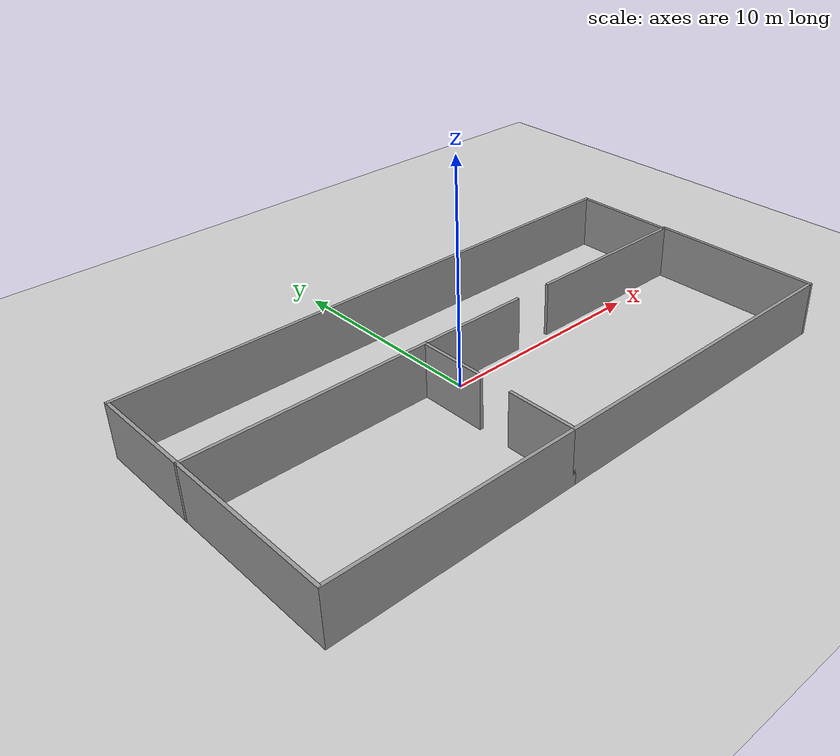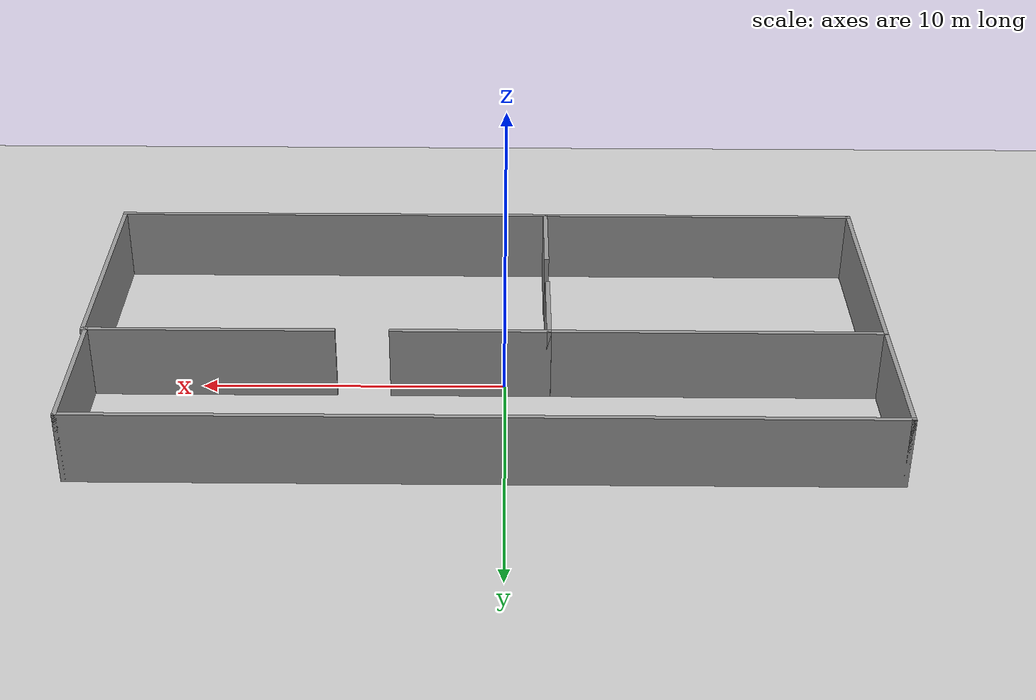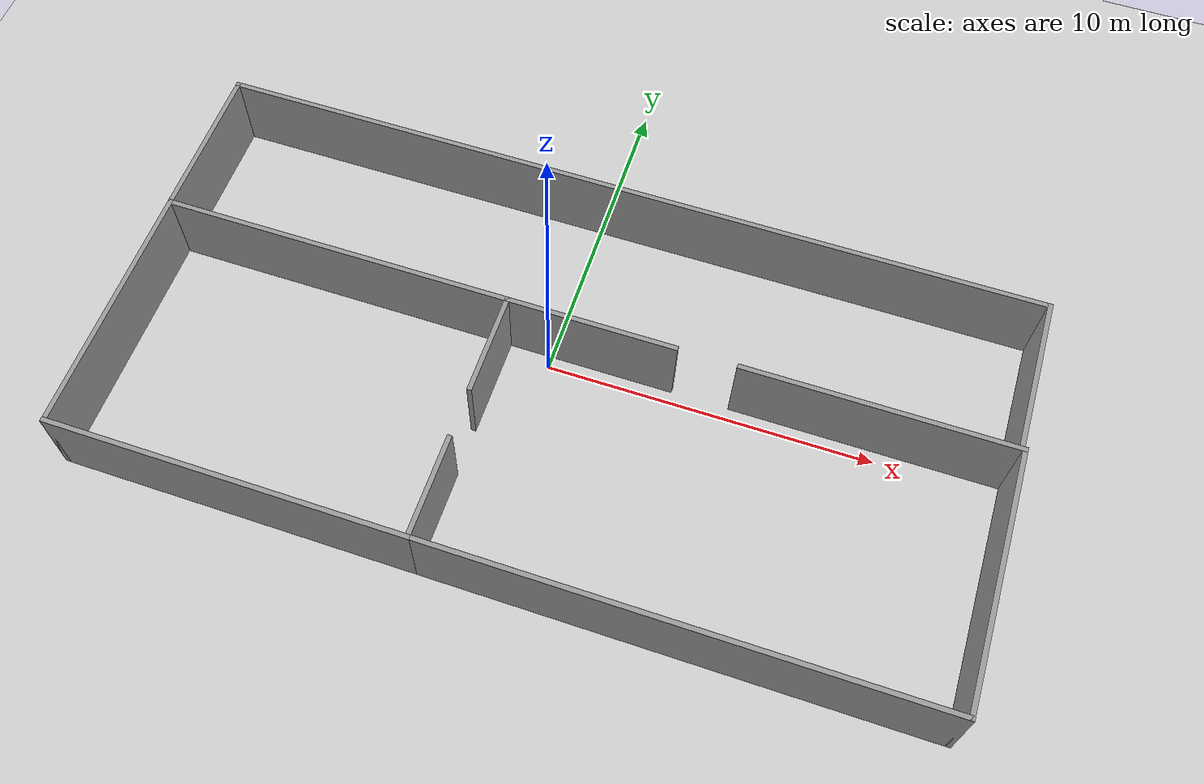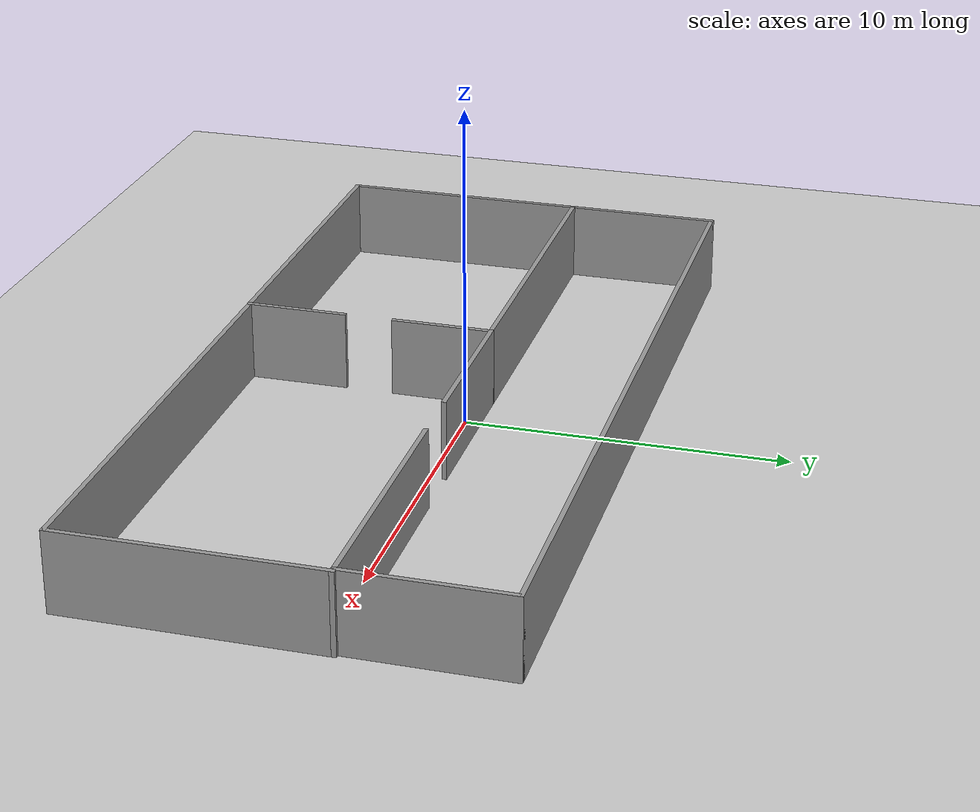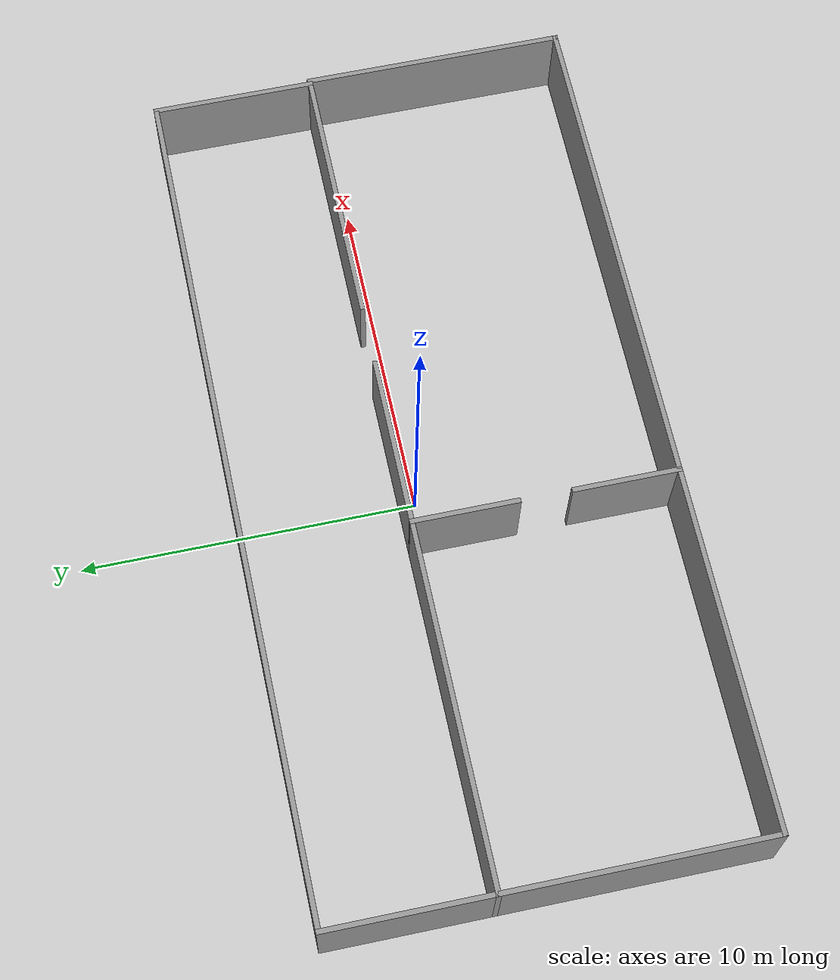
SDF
<sdf version="1.7">
 <world name="default">
  <light name="sun" type="directional">
   <pose>0 0 10 0 -0 0</pose>
   <diffuse>0.8 0.8 0.8 1</diffuse>
   <specular>0.2 0.2 0.2 1</specular>
   <attenuation>
    <range>1000</range>
    <constant>0.9</constant>
    <linear>0.01</linear>
    <quadratic>0.001</quadratic>
   </attenuation>
   <direction>-0.5 0.1 -0.9</direction>
   <spot><inner_angle>0</inner_angle><outer_angle>0</outer_angle><falloff>0</falloff></spot>
  </light>
  <model name="ground_plane">
   <static>1</static>
   <link name="link">
    <collision name="collision">
     <geometry><plane><normal>0 0 1</normal><size>100 100</size></plane></geometry>
     <surface><friction><ode><mu>100</mu><mu2>50</mu2></ode></friction></surface>
    </collision>
    <visual name="visual">
     <cast_shadows>0</cast_shadows>
     <geometry><plane><normal>0 0 1</normal><size>100 100</size></plane></geometry>
     <material>
      <script><uri>file://media/materials/scripts/gazebo.material</uri><name>Gazebo/Grey</name></script>
     </material>
    </visual>
   </link>
  </model>
  <gravity>0 0 -9.8</gravity>
  <magnetic_field>6e-06 2.3e-05 -4.2e-05</magnetic_field>
  <atmosphere type="adiabatic"/>
  <physics type="ode">
   <max_step_size>0.001</max_step_size>
   <real_time_factor>1</real_time_factor>
   <real_time_update_rate>1000</real_time_update_rate>
  </physics>
  <scene><ambient>0.4 0.4 0.4 1</ambient><background>0.7 0.7 0.7 1</background><shadows>1</shadows></scene>
  <audio><device>default</device></audio>
  <spherical_coordinates>
   <surface_model>EARTH_WGS84</surface_model>
   <latitude_deg>0</latitude_deg>
   <longitude_deg>0</longitude_deg>
   <elevation>0</elevation>
   <heading_deg>0</heading_deg>
  </spherical_coordinates>
  <model name="my_building">
   <pose>0.705623 -1.0698 0 0 -0 0</pose>
   <link name="Wall_10">
    <collision name="Wall_10_Collision">
     <geometry><box><size>5.25 0.15 2.5</size></box></geometry>
     <pose>0 0 1.25 0 -0 0</pose>
    </collision>
    <visual name="Wall_10_Visual">
     <pose>0 0 1.25 0 -0 0</pose>
     <geometry><box><size>5.25 0.15 2.5</size></box></geometry>
     <material>
      <script><uri>file://media/materials/scripts/gazebo.material</uri><name>Gazebo/Grey</name></script>
      <ambient>1 1 1 1</ambient>
     </material>
     <meta><layer>0</layer></meta>
    </visual>
    <pose>0.424999 1.5 0 0 -0 0</pose>
   </link>
   <link name="Wall_12">
    <collision name="Wall_12_Collision">
     <geometry><box><size>15.25 0.15 2.5</size></box></geometry>
     <pose>0 0 1.25 0 -0 0</pose>
    </collision>
    <visual name="Wall_12_Visual">
     <pose>0 0 1.25 0 -0 0</pose>
     <geometry><box><size>15.25 0.15 2.5</size></box></geometry>
     <material>
      <script><uri>file://media/materials/scripts/gazebo.material</uri><name>Gazebo/Grey</name></script>
      <ambient>0.752941 0.74902 0.737255 1</ambient>
     </material>
     <meta><layer>0</layer></meta>
    </visual>
    <pose>5.425 -6.35 0 0 -0 0</pose>
   </link>
   <link name="Wall_13">
    <collision name="Wall_13_Collision">
     <geometry><box><size>8 0.15 2.5</size></box></geometry>
     <pose>0 0 1.25 0 -0 0</pose>
    </collision>
    <visual name="Wall_13_Visual">
     <pose>0 0 1.25 0 -0 0</pose>
     <geometry><box><size>8 0.15 2.5</size></box></geometry>
     <material>
      <script><uri>file://media/materials/scripts/gazebo.material</uri><name>Gazebo/Grey</name></script>
      <ambient>1 1 1 1</ambient>
     </material>
     <meta><layer>0</layer></meta>
    </visual>
    <pose>12.975 -2.425 0 0 -0 1.5708</pose>
   </link>
   <link name="Wall_14">
    <collision name="Wall_14_Collision">
     <geometry><box><size>8.25 0.15 2.5</size></box></geometry>
     <pose>0 0 1.25 0 -0 0</pose>
    </collision>
    <visual name="Wall_14_Visual">
     <pose>0 0 1.25 0 -0 0</pose>
     <geometry><box><size>8.25 0.15 2.5</size></box></geometry>
     <material>
      <script><uri>file://media/materials/scripts/gazebo.material</uri><name>Gazebo/Grey</name></script>
      <ambient>1 1 1 1</ambient>
     </material>
     <meta><layer>0</layer></meta>
    </visual>
    <pose>8.925 1.5 0 0 -0 3.14159</pose>
   </link>
   <link name="Wall_19">
    <collision name="Wall_19_Collision">
     <geometry><box><size>5 0.15 2.5</size></box></geometry>
     <pose>0 0 1.25 0 -0 0</pose>
    </collision>
    <visual name="Wall_19_Visual">
     <pose>0 0 1.25 0 -0 0</pose>
     <geometry><box><size>5 0.15 2.5</size></box></geometry>
     <material>
      <script><uri>file://media/materials/scripts/gazebo.material</uri><name>Gazebo/Grey</name></script>
      <ambient>1 1 1 1</ambient>
     </material>
     <meta><layer>0</layer></meta>
    </visual>
    <pose>-12.975 3.925 0 0 -0 1.5708</pose>
   </link>
   <link name="Wall_2">
    <collision name="Wall_2_Collision">
     <geometry><box><size>11 0.15 2.5</size></box></geometry>
     <pose>0 0 1.25 0 -0 0</pose>
    </collision>
    <visual name="Wall_2_Visual">
     <pose>0 0 1.25 0 -0 0</pose>
     <geometry><box><size>11 0.15 2.5</size></box></geometry>
     <material>
      <script><uri>file://media/materials/scripts/gazebo.material</uri><name>Gazebo/Grey</name></script>
      <ambient>0.752941 0.74902 0.737255 1</ambient>
     </material>
     <meta><layer>0</layer></meta>
    </visual>
    <pose>-7.55 1.5 0 0 -0 3.14159</pose>
   </link>
   <link name="Wall_20">
    <collision name="Wall_20_Collision">
     <geometry><box><size>26 0.15 2.5</size></box></geometry>
     <pose>0 0 1.25 0 -0 0</pose>
    </collision>
    <visual name="Wall_20_Visual">
     <pose>0 0 1.25 0 -0 0</pose>
     <geometry><box><size>26 0.15 2.5</size></box></geometry>
     <material>
      <script><uri>file://media/materials/scripts/gazebo.material</uri><name>Gazebo/Grey</name></script>
      <ambient>1 1 1 1</ambient>
     </material>
     <meta><layer>0</layer></meta>
    </visual>
    <pose>-0.05 6.35 0 0 -0 0</pose>
   </link>
   <link name="Wall_21">
    <collision name="Wall_21_Collision">
     <geometry><box><size>5 0.15 2.5</size></box></geometry>
     <pose>0 0 1.25 0 -0 0</pose>
    </collision>
    <visual name="Wall_21_Visual">
     <pose>0 0 1.25 0 -0 0</pose>
     <geometry><box><size>5 0.15 2.5</size></box></geometry>
     <material>
      <script><uri>file://media/materials/scripts/gazebo.material</uri><name>Gazebo/Grey</name></script>
      <ambient>1 1 1 1</ambient>
     </material>
     <meta><layer>0</layer></meta>
    </visual>
    <pose>12.875 3.925 0 0 -0 -1.5708</pose>
   </link>
   <link name="Wall_4">
    <collision name="Wall_4_Collision">
     <geometry><box><size>8 0.15 2.5</size></box></geometry>
     <pose>0 0 1.25 0 -0 0</pose>
    </collision>
    <visual name="Wall_4_Visual">
     <pose>0 0 1.25 0 -0 0</pose>
     <geometry><box><size>8 0.15 2.5</size></box></geometry>
     <material>
      <script><uri>file://media/materials/scripts/gazebo.material</uri><name>Gazebo/Grey</name></script>
      <ambient>0.752941 0.74902 0.737255 1</ambient>
     </material>
     <meta><layer>0</layer></meta>
    </visual>
    <pose>-12.975 -2.425 0 0 -0 -1.5708</pose>
   </link>
   <link name="Wall_5">
    <collision name="Wall_5_Collision">
     <geometry><box><size>11 0.15 2.5</size></box></geometry>
     <pose>0 0 1.25 0 -0 0</pose>
    </collision>
    <visual name="Wall_5_Visual">
     <pose>0 0 1.25 0 -0 0</pose>
     <geometry><box><size>11 0.15 2.5</size></box></geometry>
     <material>
      <script><uri>file://media/materials/scripts/gazebo.material</uri><name>Gazebo/Grey</name></script>
      <ambient>0.752941 0.74902 0.737255 1</ambient>
     </material>
     <meta><layer>0</layer></meta>
    </visual>
    <pose>-7.55 -6.35 0 0 -0 0</pose>
   </link>
   <link name="Wall_6">
    <collision name="Wall_6_Collision">
     <geometry><box><size>3.25 0.15 2.5</size></box></geometry>
     <pose>0 0 1.25 0 -0 0</pose>
    </collision>
    <visual name="Wall_6_Visual">
     <pose>0 0 1.25 0 -0 0</pose>
     <geometry><box><size>3.25 0.15 2.5</size></box></geometry>
     <material>
      <script><uri>file://media/materials/scripts/gazebo.material</uri><name>Gazebo/Grey</name></script>
      <ambient>1 1 1 1</ambient>
     </material>
     <meta><layer>0</layer></meta>
    </visual>
    <pose>-2.125 -4.8 0 0 -0 1.5708</pose>
   </link>
   <link name="Wall_8">
    <collision name="Wall_8_Collision">
     <geometry><box><size>3.25 0.15 2.5</size></box></geometry>
     <pose>0 0 1.25 0 -0 0</pose>
    </collision>
    <visual name="Wall_8_Visual">
     <pose>0 0 1.25 0 -0 0</pose>
     <geometry><box><size>3.25 0.15 2.5</size></box></geometry>
     <material>
      <script><uri>file://media/materials/scripts/gazebo.material</uri><name>Gazebo/Grey</name></script>
      <ambient>1 1 1 1</ambient>
     </material>
     <meta><layer>0</layer></meta>
    </visual>
    <pose>-2.125 -0.05 0 0 -0 -1.5708</pose>
   </link>
   <static>1</static>
  </model>
 </world>
</sdf>
